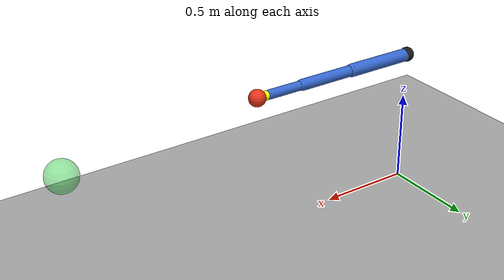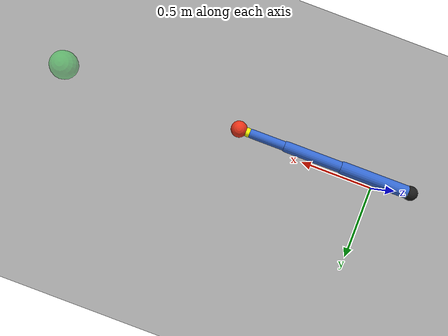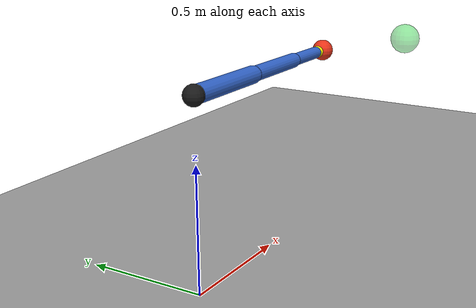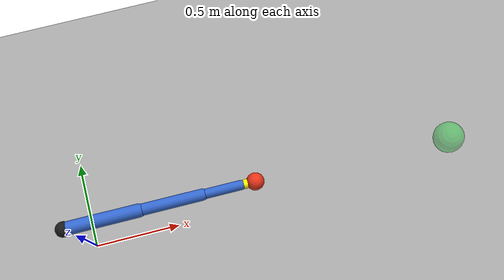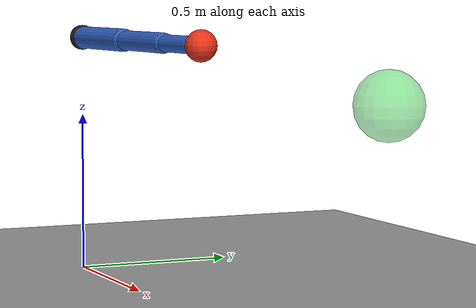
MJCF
<mujoco model="three_link_throw">
  <compiler angle="radian" coordinate="local"/>
  <option timestep="0.002" gravity="0 0 -9.81" integrator="RK4"/>

  <default>
    <joint damping="0.05" armature="0.01" limited="true"/>
    <geom density="800" friction="0.8 0.1 0.1"/>
    <motor ctrllimited="true"/>
  </default>

  <asset>
    <material name="arm_mat" rgba="0.2 0.4 0.8 1"/>
    <material name="ball_mat" rgba="0.9 0.2 0.1 1"/>
    <material name="target_mat" rgba="0.1 0.8 0.2 0.45"/>
    <material name="ground_mat" rgba="0.65 0.65 0.65 1"/>
  </asset>

  <worldbody>
    <light pos="0 -3 5" dir="0 1 -1"/>
    <camera name="side" pos="1.6 -4.5 1.2" xyaxes="1 0 0 0 0 1"/>
    <geom name="ground" type="plane" size="6 6 0.1" material="ground_mat"/>

    <body name="base" pos="0 0 0.75">
      <geom type="sphere" size="0.04" rgba="0.1 0.1 0.1 1"/>
      <body name="link1" pos="0 0 0">
        <joint name="shoulder" type="hinge" axis="0 1 0" range="-2.8 2.8"/>
        <geom name="upper_arm" type="capsule" fromto="0 0 0 0.38 0 0" size="0.035" material="arm_mat"/>
        <body name="link2" pos="0.38 0 0">
          <joint name="elbow" type="hinge" axis="0 1 0" range="-2.8 2.8"/>
          <geom name="forearm" type="capsule" fromto="0 0 0 0.32 0 0" size="0.03" material="arm_mat"/>
          <body name="link3" pos="0.32 0 0">
            <joint name="wrist" type="hinge" axis="0 1 0" range="-2.8 2.8"/>
            <geom name="hand_link" type="capsule" fromto="0 0 0 0.20 0 0" size="0.025" material="arm_mat"/>
            <site name="hand_site" pos="0.22 0 0" size="0.025" rgba="1 1 0 1"/>
          </body>
        </body>
      </body>
    </body>

    <body name="ball" pos="0.97 0 0.75">
      <freejoint name="ball_free"/>
      <geom name="ball_geom" type="sphere" size="0.045" mass="0.08" material="ball_mat"/>
    </body>

    <body name="target" pos="2.0 0 0.65">
      <geom name="target_geom" type="sphere" size="0.08" contype="0" conaffinity="0" material="target_mat"/>
    </body>
  </worldbody>

  <equality>
    <weld name="hold_ball" body1="link3" body2="ball" active="true"
          relpose="0.27 0 0 1 0 0 0" solref="0.002 1" solimp="0.95 0.99 0.001"/>
  </equality>

  <actuator>
    <position name="shoulder_pos" joint="shoulder" kp="35" ctrlrange="-2.8 2.8"/>
    <position name="elbow_pos" joint="elbow" kp="30" ctrlrange="-2.8 2.8"/>
    <position name="wrist_pos" joint="wrist" kp="20" ctrlrange="-2.8 2.8"/>
  </actuator>
</mujoco>
